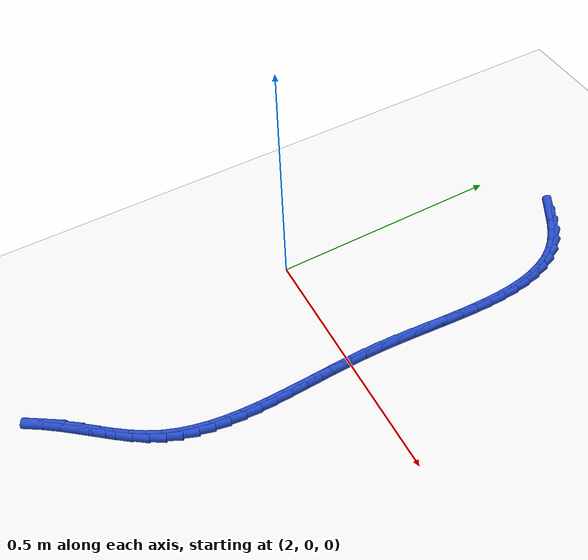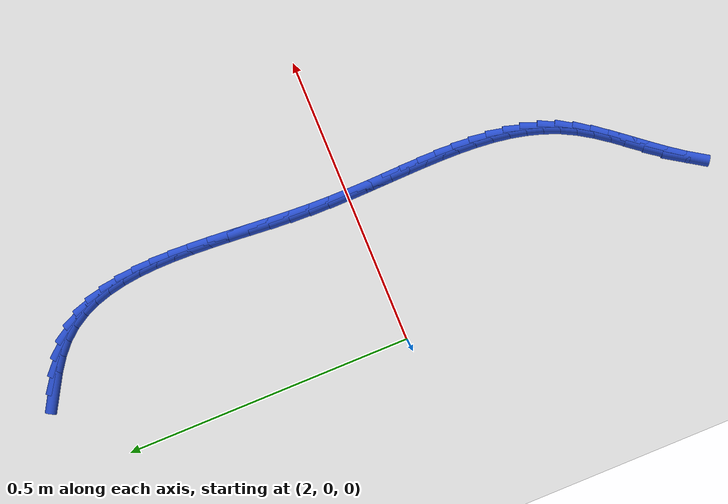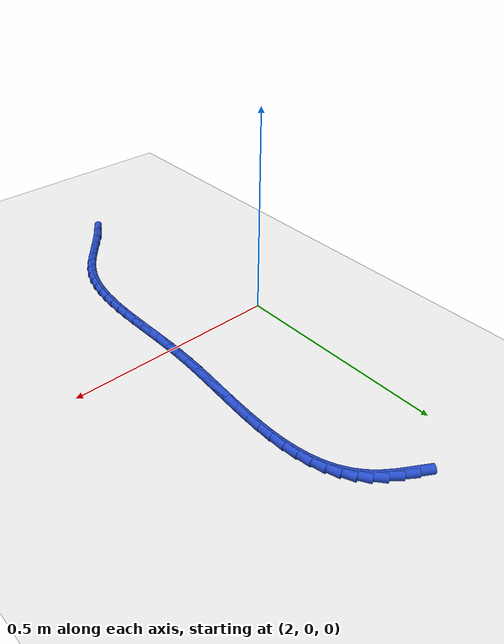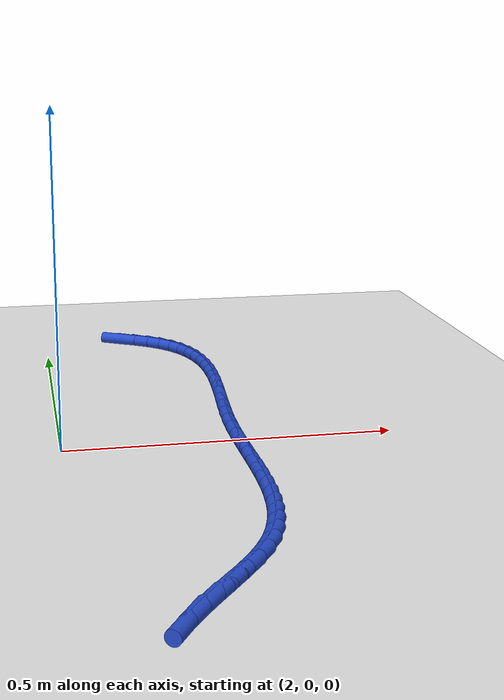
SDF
<sdf version="1.6">
 <world name="default">
  <model name="ground_plane">
   <static>1</static>
   <link name="link">
    <collision name="collision">
     <geometry><plane><normal>0 0 1</normal><size>100 100</size></plane></geometry>
     <surface><friction><ode><mu>100</mu><mu2>50</mu2></ode></friction></surface>
    </collision>
    <visual name="visual">
     <cast_shadows>0</cast_shadows>
     <geometry><plane><normal>0 0 1</normal><size>100 100</size></plane></geometry>
     <material>
      <script><uri>file://media/materials/scripts/gazebo.material</uri><name>Gazebo/WhiteGlow</name></script>
     </material>
    </visual>
   </link>
  </model>
  <model name="line">
   <link name="link_101">
    <pose>2.1457100820233674 0.577064400393647 0.01 0 1.57 -0.5336713087816723</pose>
    <collision name="collision">
     <geometry><cylinder><radius>0.01</radius><length>0.08</length></cylinder></geometry>
    </collision>
    <visual name="visual">
     <material>
      <script><name>Gazebo/Blue</name><uri>file://media/materials/scripts/gazebo.material</uri></script>
     </material>
     <geometry><cylinder><radius>0.01</radius><length>0.08</length></cylinder></geometry>
    </visual>
   </link>
   <link name="link_102">
    <pose>2.17172263565623 0.5616946403664816 0.01 0 1.57 -0.6139051651730468</pose>
    <collision name="collision">
     <geometry><cylinder><radius>0.01</radius><length>0.08</length></cylinder></geometry>
    </collision>
    <visual name="visual">
     <material>
      <script><name>Gazebo/Blue</name><uri>file://media/materials/scripts/gazebo.material</uri></script>
     </material>
     <geometry><cylinder><radius>0.01</radius><length>0.08</length></cylinder></geometry>
    </visual>
   </link>
   <link name="link_103">
    <pose>2.195410075306157 0.5450009743446751 0.01 0 1.57 -0.7287631346408664</pose>
    <collision name="collision">
     <geometry><cylinder><radius>0.01</radius><length>0.08</length></cylinder></geometry>
    </collision>
    <visual name="visual">
     <material>
      <script><name>Gazebo/Blue</name><uri>file://media/materials/scripts/gazebo.material</uri></script>
     </material>
     <geometry><cylinder><radius>0.01</radius><length>0.08</length></cylinder></geometry>
    </visual>
   </link>
   <link name="link_104">
    <pose>2.2161512798022627 0.5264854556529301 0.01 0 1.57 -0.8764051815039844</pose>
    <collision name="collision">
     <geometry><cylinder><radius>0.01</radius><length>0.08</length></cylinder></geometry>
    </collision>
    <visual name="visual">
     <material>
      <script><name>Gazebo/Blue</name><uri>file://media/materials/scripts/gazebo.material</uri></script>
     </material>
     <geometry><cylinder><radius>0.01</radius><length>0.08</length></cylinder></geometry>
    </visual>
   </link>
   <link name="link_105">
    <pose>2.233434888441509 0.5057304799783171 0.01 0 1.57 -1.0258224913205392</pose>
    <collision name="collision">
     <geometry><cylinder><radius>0.01</radius><length>0.08</length></cylinder></geometry>
    </collision>
    <visual name="visual">
     <material>
      <script><name>Gazebo/Blue</name><uri>file://media/materials/scripts/gazebo.material</uri></script>
     </material>
     <geometry><cylinder><radius>0.01</radius><length>0.08</length></cylinder></geometry>
    </visual>
   </link>
   <link name="link_106">
    <pose>2.247357672190513 0.48276358264629077 0.01 0 1.57 -1.1606868679581817</pose>
    <collision name="collision">
     <geometry><cylinder><radius>0.01</radius><length>0.08</length></cylinder></geometry>
    </collision>
    <visual name="visual">
     <material>
      <script><name>Gazebo/Blue</name><uri>file://media/materials/scripts/gazebo.material</uri></script>
     </material>
     <geometry><cylinder><radius>0.01</radius><length>0.08</length></cylinder></geometry>
    </visual>
   </link>
   <link name="link_107">
    <pose>2.2582258304452822 0.457765596203913 0.01 0 1.57 -1.2771029647505892</pose>
    <collision name="collision">
     <geometry><cylinder><radius>0.01</radius><length>0.08</length></cylinder></geometry>
    </collision>
    <visual name="visual">
     <material>
      <script><name>Gazebo/Blue</name><uri>file://media/materials/scripts/gazebo.material</uri></script>
     </material>
     <geometry><cylinder><radius>0.01</radius><length>0.08</length></cylinder></geometry>
    </visual>
   </link>
   <link name="link_108">
    <pose>2.2663457566625778 0.43091749524664824 0.01 0 1.57 -1.374256014430007</pose>
    <collision name="collision">
     <geometry><cylinder><radius>0.01</radius><length>0.08</length></cylinder></geometry>
    </collision>
    <visual name="visual">
     <material>
      <script><name>Gazebo/Blue</name><uri>file://media/materials/scripts/gazebo.material</uri></script>
     </material>
     <geometry><cylinder><radius>0.01</radius><length>0.08</length></cylinder></geometry>
    </visual>
   </link>
   <link name="link_109">
    <pose>2.272023844299159 0.40240025436996174 0.01 0 1.57 -1.4532735842693072</pose>
    <collision name="collision">
     <geometry><cylinder><radius>0.01</radius><length>0.08</length></cylinder></geometry>
    </collision>
    <visual name="visual">
     <material>
      <script><name>Gazebo/Blue</name><uri>file://media/materials/scripts/gazebo.material</uri></script>
     </material>
     <geometry><cylinder><radius>0.01</radius><length>0.08</length></cylinder></geometry>
    </visual>
   </link>
   <link name="link_110">
    <pose>2.275566486811786 0.37239484816931806 0.01 0 1.57 -1.5161255735686605</pose>
    <collision name="collision">
     <geometry><cylinder><radius>0.01</radius><length>0.08</length></cylinder></geometry>
    </collision>
    <visual name="visual">
     <material>
      <script><name>Gazebo/Blue</name><uri>file://media/materials/scripts/gazebo.material</uri></script>
     </material>
     <geometry><cylinder><radius>0.01</radius><length>0.08</length></cylinder></geometry>
    </visual>
   </link>
   <link name="link_111">
    <pose>2.277280077657219 0.34108225124018204 0.01 0 1.57 -1.5649104631605804</pose>
    <collision name="collision">
     <geometry><cylinder><radius>0.01</radius><length>0.08</length></cylinder></geometry>
    </collision>
    <visual name="visual">
     <material>
      <script><name>Gazebo/Blue</name><uri>file://media/materials/scripts/gazebo.material</uri></script>
     </material>
     <geometry><cylinder><radius>0.01</radius><length>0.08</length></cylinder></geometry>
    </visual>
   </link>
   <link name="link_112">
    <pose>2.2774710102922184 0.3086434381780177 0.01 0 1.57 1.5400927494768115</pose>
    <collision name="collision">
     <geometry><cylinder><radius>0.01</radius><length>0.08</length></cylinder></geometry>
    </collision>
    <visual name="visual">
     <material>
      <script><name>Gazebo/Blue</name><uri>file://media/materials/scripts/gazebo.material</uri></script>
     </material>
     <geometry><cylinder><radius>0.01</radius><length>0.08</length></cylinder></geometry>
    </visual>
   </link>
   <link name="link_113">
    <pose>2.2764456781735425 0.2752593835782909 0.01 0 1.57 1.5141863487807568</pose>
    <collision name="collision">
     <geometry><cylinder><radius>0.01</radius><length>0.08</length></cylinder></geometry>
    </collision>
    <visual name="visual">
     <material>
      <script><name>Gazebo/Blue</name><uri>file://media/materials/scripts/gazebo.material</uri></script>
     </material>
     <geometry><cylinder><radius>0.01</radius><length>0.08</length></cylinder></geometry>
    </visual>
   </link>
   <link name="link_114">
    <pose>2.2745104747579536 0.24111106203646582 0.01 0 1.57 1.4978318366877614</pose>
    <collision name="collision">
     <geometry><cylinder><radius>0.01</radius><length>0.08</length></cylinder></geometry>
    </collision>
    <visual name="visual">
     <material>
      <script><name>Gazebo/Blue</name><uri>file://media/materials/scripts/gazebo.material</uri></script>
     </material>
     <geometry><cylinder><radius>0.01</radius><length>0.08</length></cylinder></geometry>
    </visual>
   </link>
   <link name="link_115">
    <pose>2.2719717935022103 0.20637944814800663 0.01 0 1.57 1.4902578981511396</pose>
    <collision name="collision">
     <geometry><cylinder><radius>0.01</radius><length>0.08</length></cylinder></geometry>
    </collision>
    <visual name="visual">
     <material>
      <script><name>Gazebo/Blue</name><uri>file://media/materials/scripts/gazebo.material</uri></script>
     </material>
     <geometry><cylinder><radius>0.01</radius><length>0.08</length></cylinder></geometry>
    </visual>
   </link>
   <link name="link_116">
    <pose>2.269136027863073 0.1712455165083792 0.01 0 1.57 1.4910215783226872</pose>
    <collision name="collision">
     <geometry><cylinder><radius>0.01</radius><length>0.08</length></cylinder></geometry>
    </collision>
    <visual name="visual">
     <material>
      <script><name>Gazebo/Blue</name><uri>file://media/materials/scripts/gazebo.material</uri></script>
     </material>
     <geometry><cylinder><radius>0.01</radius><length>0.08</length></cylinder></geometry>
    </visual>
   </link>
   <link name="link_117">
    <pose>2.266309571297301 0.1358902417130476 0.01 0 1.57 1.499980955081295</pose>
    <collision name="collision">
     <geometry><cylinder><radius>0.01</radius><length>0.08</length></cylinder></geometry>
    </collision>
    <visual name="visual">
     <material>
      <script><name>Gazebo/Blue</name><uri>file://media/materials/scripts/gazebo.material</uri></script>
     </material>
     <geometry><cylinder><radius>0.01</radius><length>0.08</length></cylinder></geometry>
    </visual>
   </link>
   <link name="link_118">
    <pose>2.2637988172616557 0.10049459835747668 0.01 0 1.57 1.517276190273626</pose>
    <collision name="collision">
     <geometry><cylinder><radius>0.01</radius><length>0.08</length></cylinder></geometry>
    </collision>
    <visual name="visual">
     <material>
      <script><name>Gazebo/Blue</name><uri>file://media/materials/scripts/gazebo.material</uri></script>
     </material>
     <geometry><cylinder><radius>0.01</radius><length>0.08</length></cylinder></geometry>
    </visual>
   </link>
   <link name="link_119">
    <pose>2.2619101592128956 0.06523956103713069 0.01 0 1.57 1.542447162731856</pose>
    <collision name="collision">
     <geometry><cylinder><radius>0.01</radius><length>0.08</length></cylinder></geometry>
    </collision>
    <visual name="visual">
     <material>
      <script><name>Gazebo/Blue</name><uri>file://media/materials/scripts/gazebo.material</uri></script>
     </material>
     <geometry><cylinder><radius>0.01</radius><length>0.08</length></cylinder></geometry>
    </visual>
   </link>
   <link name="link_120">
    <pose>2.260919345343305 0.030298551053464403 0.01 0 1.57 1.5664537789100108</pose>
    <collision name="collision">
     <geometry><cylinder><radius>0.01</radius><length>0.08</length></cylinder></geometry>
    </collision>
    <visual name="visual">
     <material>
      <script><name>Gazebo/Blue</name><uri>file://media/materials/scripts/gazebo.material</uri></script>
     </material>
     <geometry><cylinder><radius>0.01</radius><length>0.08</length></cylinder></geometry>
    </visual>
   </link>
   <link name="link_121">
    <pose>2.260769372006416 -0.004237025328113482 0.01 0 1.57 -1.5581876296605603</pose>
    <collision name="collision">
     <geometry><cylinder><radius>0.01</radius><length>0.08</length></cylinder></geometry>
    </collision>
    <visual name="visual">
     <material>
      <script><name>Gazebo/Blue</name><uri>file://media/materials/scripts/gazebo.material</uri></script>
     </material>
     <geometry><cylinder><radius>0.01</radius><length>0.08</length></cylinder></geometry>
    </visual>
   </link>
   <link name="link_122">
    <pose>2.261199212951887 -0.038326048329786915 0.01 0 1.57 -1.5486085782119785</pose>
    <collision name="collision">
     <geometry><cylinder><radius>0.01</radius><length>0.08</length></cylinder></geometry>
    </collision>
    <visual name="visual">
     <material>
      <script><name>Gazebo/Blue</name><uri>file://media/materials/scripts/gazebo.material</uri></script>
     </material>
     <geometry><cylinder><radius>0.01</radius><length>0.08</length></cylinder></geometry>
    </visual>
   </link>
   <link name="link_123">
    <pose>2.261944889767473 -0.07192812580808115 0.01 0 1.57 -1.5466879057220901</pose>
    <collision name="collision">
     <geometry><cylinder><radius>0.01</radius><length>0.08</length></cylinder></geometry>
    </collision>
    <visual name="visual">
     <material>
      <script><name>Gazebo/Blue</name><uri>file://media/materials/scripts/gazebo.material</uri></script>
     </material>
     <geometry><cylinder><radius>0.01</radius><length>0.08</length></cylinder></geometry>
    </visual>
   </link>
   <link name="link_124">
    <pose>2.262742424040926 -0.10500286561952127 0.01 0 1.57 -1.5527894401368394</pose>
    <collision name="collision">
     <geometry><cylinder><radius>0.01</radius><length>0.08</length></cylinder></geometry>
    </collision>
    <visual name="visual">
     <material>
      <script><name>Gazebo/Blue</name><uri>file://media/materials/scripts/gazebo.material</uri></script>
     </material>
     <geometry><cylinder><radius>0.01</radius><length>0.08</length></cylinder></geometry>
    </visual>
   </link>
   <link name="link_125">
    <pose>2.2633278373600025 -0.13750987562063346 0.01 0 1.57 -1.567369451087499</pose>
    <collision name="collision">
     <geometry><cylinder><radius>0.01</radius><length>0.08</length></cylinder></geometry>
    </collision>
    <visual name="visual">
     <material>
      <script><name>Gazebo/Blue</name><uri>file://media/materials/scripts/gazebo.material</uri></script>
     </material>
     <geometry><cylinder><radius>0.01</radius><length>0.08</length></cylinder></geometry>
    </visual>
   </link>
   <link name="link_126">
    <pose>2.263437151312454 -0.16940876366794105 0.01 0 1.57 1.5506148662396715</pose>
    <collision name="collision">
     <geometry><cylinder><radius>0.01</radius><length>0.08</length></cylinder></geometry>
    </collision>
    <visual name="visual">
     <material>
      <script><name>Gazebo/Blue</name><uri>file://media/materials/scripts/gazebo.material</uri></script>
     </material>
     <geometry><cylinder><radius>0.01</radius><length>0.08</length></cylinder></geometry>
    </visual>
   </link>
   <link name="link_127">
    <pose>2.2628063874860365 -0.20065913761797016 0.01 0 1.57 1.517354412055944</pose>
    <collision name="collision">
     <geometry><cylinder><radius>0.01</radius><length>0.08</length></cylinder></geometry>
    </collision>
    <visual name="visual">
     <material>
      <script><name>Gazebo/Blue</name><uri>file://media/materials/scripts/gazebo.material</uri></script>
     </material>
     <geometry><cylinder><radius>0.01</radius><length>0.08</length></cylinder></geometry>
    </visual>
   </link>
   <link name="link_128">
    <pose>2.2611715674685016 -0.23122060532724598 0.01 0 1.57 1.4737955219781027</pose>
    <collision name="collision">
     <geometry><cylinder><radius>0.01</radius><length>0.08</length></cylinder></geometry>
    </collision>
    <visual name="visual">
     <material>
      <script><name>Gazebo/Blue</name><uri>file://media/materials/scripts/gazebo.material</uri></script>
     </material>
     <geometry><cylinder><radius>0.01</radius><length>0.08</length></cylinder></geometry>
    </visual>
   </link>
   <link name="link_129">
    <pose>2.258268712847604 -0.2610527746522936 0.01 0 1.57 1.4193668072746763</pose>
    <collision name="collision">
     <geometry><cylinder><radius>0.01</radius><length>0.08</length></cylinder></geometry>
    </collision>
    <visual name="visual">
     <material>
      <script><name>Gazebo/Blue</name><uri>file://media/materials/scripts/gazebo.material</uri></script>
     </material>
     <geometry><cylinder><radius>0.01</radius><length>0.08</length></cylinder></geometry>
    </visual>
   </link>
   <link name="link_130">
    <pose>2.2538338452110995 -0.2901152534496385 0.01 0 1.57 1.3537284571081922</pose>
    <collision name="collision">
     <geometry><cylinder><radius>0.01</radius><length>0.08</length></cylinder></geometry>
    </collision>
    <visual name="visual">
     <material>
      <script><name>Gazebo/Blue</name><uri>file://media/materials/scripts/gazebo.material</uri></script>
     </material>
     <geometry><cylinder><radius>0.01</radius><length>0.08</length></cylinder></geometry>
    </visual>
   </link>
   <link name="link_131">
    <pose>2.2476029861467395 -0.31836764957580554 0.01 0 1.57 1.2769891029917881</pose>
    <collision name="collision">
     <geometry><cylinder><radius>0.01</radius><length>0.08</length></cylinder></geometry>
    </collision>
    <visual name="visual">
     <material>
      <script><name>Gazebo/Blue</name><uri>file://media/materials/scripts/gazebo.material</uri></script>
     </material>
     <geometry><cylinder><radius>0.01</radius><length>0.08</length></cylinder></geometry>
    </visual>
   </link>
   <link name="link_132">
    <pose>2.2393121572422796 -0.3457695708873208 0.01 0 1.57 1.1899532644800765</pose>
    <collision name="collision">
     <geometry><cylinder><radius>0.01</radius><length>0.08</length></cylinder></geometry>
    </collision>
    <visual name="visual">
     <material>
      <script><name>Gazebo/Blue</name><uri>file://media/materials/scripts/gazebo.material</uri></script>
     </material>
     <geometry><cylinder><radius>0.01</radius><length>0.08</length></cylinder></geometry>
    </visual>
   </link>
   <link name="link_133">
    <pose>2.228697380085473 -0.3722806252407079 0.01 0 1.57 1.0945507455920989</pose>
    <collision name="collision">
     <geometry><cylinder><radius>0.01</radius><length>0.08</length></cylinder></geometry>
    </collision>
    <visual name="visual">
     <material>
      <script><name>Gazebo/Blue</name><uri>file://media/materials/scripts/gazebo.material</uri></script>
     </material>
     <geometry><cylinder><radius>0.01</radius><length>0.08</length></cylinder></geometry>
    </visual>
   </link>
   <link name="link_134">
    <pose>2.215500608572687 -0.39786329332471054 0.01 0 1.57 1.0059282462817487</pose>
    <collision name="collision">
     <geometry><cylinder><radius>0.01</radius><length>0.08</length></cylinder></geometry>
    </collision>
    <visual name="visual">
     <material>
      <script><name>Gazebo/Blue</name><uri>file://media/materials/scripts/gazebo.material</uri></script>
     </material>
     <geometry><cylinder><radius>0.01</radius><length>0.08</length></cylinder></geometry>
    </visual>
   </link>
   <link name="link_135">
    <pose>2.199797326109158 -0.42264157377682476 0.01 0 1.57 0.9439800985547107</pose>
    <collision name="collision">
     <geometry><cylinder><radius>0.01</radius><length>0.08</length></cylinder></geometry>
    </collision>
    <visual name="visual">
     <material>
      <script><name>Gazebo/Blue</name><uri>file://media/materials/scripts/gazebo.material</uri></script>
     </material>
     <geometry><cylinder><radius>0.01</radius><length>0.08</length></cylinder></geometry>
    </visual>
   </link>
   <link name="link_136">
    <pose>2.182167497527662 -0.4469837698708469 0.01 0 1.57 0.9087656778460785</pose>
    <collision name="collision">
     <geometry><cylinder><radius>0.01</radius><length>0.08</length></cylinder></geometry>
    </collision>
    <visual name="visual">
     <material>
      <script><name>Gazebo/Blue</name><uri>file://media/materials/scripts/gazebo.material</uri></script>
     </material>
     <geometry><cylinder><radius>0.01</radius><length>0.08</length></cylinder></geometry>
    </visual>
   </link>
   <link name="link_137">
    <pose>2.1632330563249758 -0.47127850899685675 0.01 0 1.57 0.8983268462426957</pose>
    <collision name="collision">
     <geometry><cylinder><radius>0.01</radius><length>0.08</length></cylinder></geometry>
    </collision>
    <visual name="visual">
     <material>
      <script><name>Gazebo/Blue</name><uri>file://media/materials/scripts/gazebo.material</uri></script>
     </material>
     <geometry><cylinder><radius>0.01</radius><length>0.08</length></cylinder></geometry>
    </visual>
   </link>
   <link name="link_138">
    <pose>2.143615935997882 -0.4959144185449342 0.01 0 1.57 0.9110075622963357</pose>
    <collision name="collision">
     <geometry><cylinder><radius>0.01</radius><length>0.08</length></cylinder></geometry>
    </collision>
    <visual name="visual">
     <material>
      <script><name>Gazebo/Blue</name><uri>file://media/materials/scripts/gazebo.material</uri></script>
     </material>
     <geometry><cylinder><radius>0.01</radius><length>0.08</length></cylinder></geometry>
    </visual>
   </link>
   <link name="link_139">
    <pose>2.1239380700431583 -0.5212801259051587 0.01 0 1.57 0.9455781225200258</pose>
    <collision name="collision">
     <geometry><cylinder><radius>0.01</radius><length>0.08</length></cylinder></geometry>
    </collision>
    <visual name="visual">
     <material>
      <script><name>Gazebo/Blue</name><uri>file://media/materials/scripts/gazebo.material</uri></script>
     </material>
     <geometry><cylinder><radius>0.01</radius><length>0.08</length></cylinder></geometry>
    </visual>
   </link>
   <link name="link_140">
    <pose>2.104821391957585 -0.5477642584676109 0.01 0 1.57 0.9993999396820942</pose>
    <collision name="collision">
     <geometry><cylinder><radius>0.01</radius><length>0.08</length></cylinder></geometry>
    </collision>
    <visual name="visual">
     <material>
      <script><name>Gazebo/Blue</name><uri>file://media/materials/scripts/gazebo.material</uri></script>
     </material>
     <geometry><cylinder><radius>0.01</radius><length>0.08</length></cylinder></geometry>
    </visual>
   </link>
  </model>
 </world>
</sdf>
